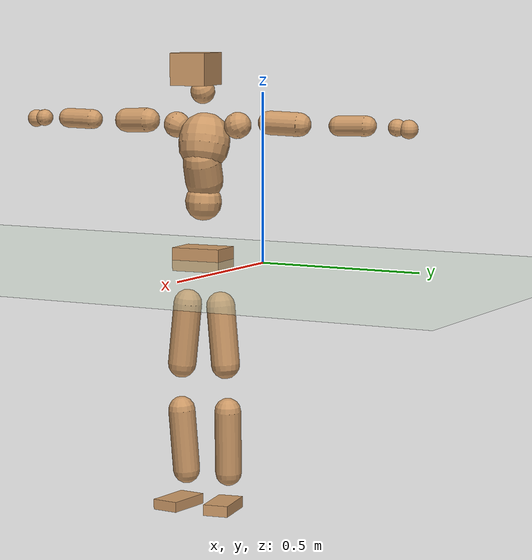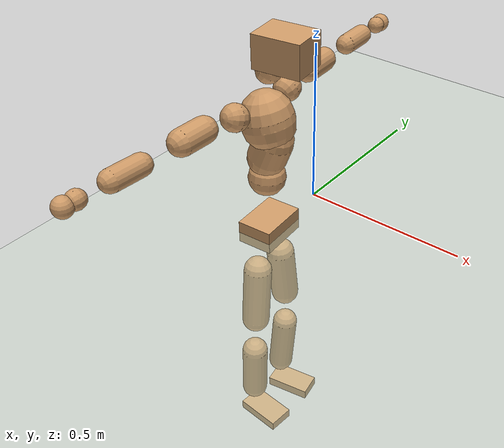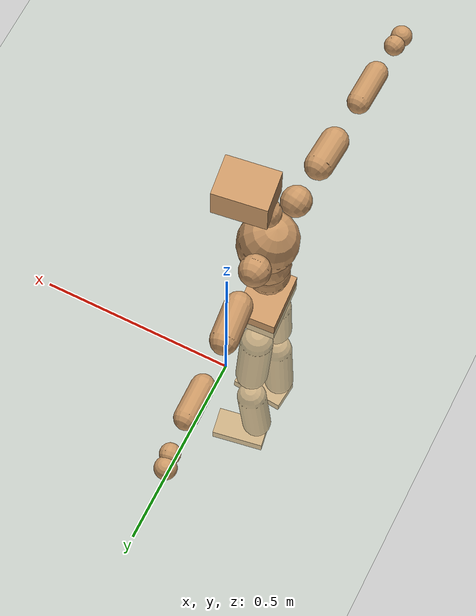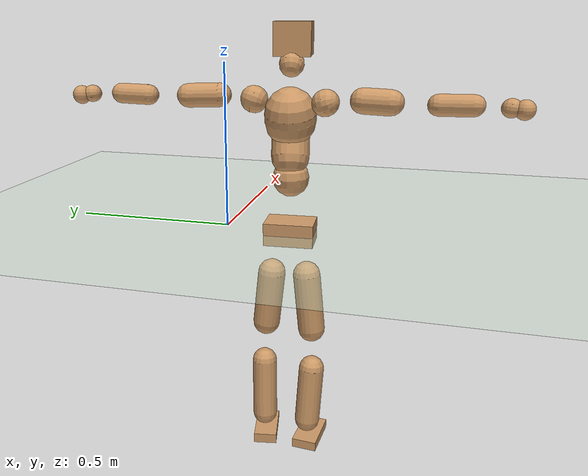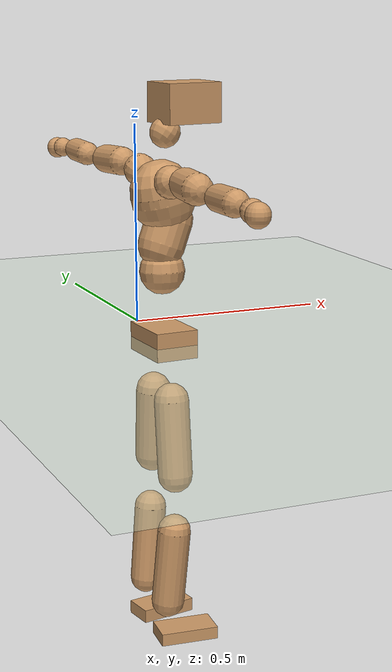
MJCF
<mujoco model="humanoid">
  <compiler coordinate="local" angle="radian"/>
  <default>
    <joint damping="0.0" armature="0.01" stiffness="0.0" limited="true"/>
    <geom conaffinity="1" condim="3" contype="7" margin="0.001" rgba="0.8 0.6 .4 1"/>
  </default>
  <asset>
    <texture type="skybox" builtin="gradient" rgb1=".4 .5 .6" rgb2="0 0 0" width="100" height="100"/>
    <texture builtin="flat" height="1278" mark="cross" markrgb="1 1 1" name="texgeom" random="0.01" rgb1="0.8 0.6 0.4" rgb2="0.8 0.6 0.4" type="cube" width="127"/>
    <texture builtin="checker" height="100" name="texplane" rgb1="0 0 0" rgb2="0.8 0.8 0.8" type="2d" width="100"/>
    <material name="MatPlane" reflectance="0.5" shininess="1" specular="1" texrepeat="60 60" texture="texplane"/>
    <material name="geom" texture="texgeom" texuniform="true"/>
  </asset>
  <worldbody>
    <light cutoff="100" diffuse="1 1 1" dir="-0 0 -1.3" directional="true" exponent="1" pos="0 0 1.3" specular=".1 .1 .1"/>
    <geom conaffinity="1" condim="3" name="floor" pos="0 0 0" rgba="0.8 0.9 0.8 1" size="100 100 .2" type="plane" material="MatPlane"/>
    <body name="Pelvis" pos="-0.0042 -0.2061 0.0116">
      <freejoint name="Pelvis"/>
      <geom type="box" contype="1" conaffinity="1" density="5359.37527" pos="-0.0053 -0.0003 -0.0109" size="0.0536 0.0758 0.0347" quat="0.9995 0.0000 0.0000 0.0315" name="Pelvis"/>
      <body name="L_Hip" pos="-0.0121 0.0493 -0.0783">
        <joint name="L_Hip_x" type="hinge" pos="0 0 0" axis="1 0 0" stiffness="1600" damping="160" armature="0.02" range="-180.0000 180.0000"/>
        <joint name="L_Hip_y" type="hinge" pos="0 0 0" axis="0 1 0" stiffness="1600" damping="160" armature="0.02" range="-180.0000 180.0000"/>
        <joint name="L_Hip_z" type="hinge" pos="0 0 0" axis="0 0 1" stiffness="1600" damping="160" armature="0.02" range="-180.0000 180.0000"/>
        <geom type="capsule" contype="1" conaffinity="1" density="2040.816327" size="0.0431" fromto="0.0011 0.0073 -0.0728 0.0036 0.0250 -0.2480" name="L_Hip"/>
        <body name="L_Knee" pos="0.0047 0.0324 -0.3208">
          <joint name="L_Knee_x" type="hinge" pos="0 0 0" axis="1 0 0" stiffness="1600" damping="160" armature="0.02" range="-180.0000 180.0000"/>
          <joint name="L_Knee_y" type="hinge" pos="0 0 0" axis="0 1 0" stiffness="1600" damping="160" armature="0.02" range="-180.0000 180.0000"/>
          <joint name="L_Knee_z" type="hinge" pos="0 0 0" axis="0 0 1" stiffness="1600" damping="160" armature="0.02" range="-180.0000 180.0000"/>
          <geom type="capsule" contype="1" conaffinity="1" density="1234.567901" size="0.04" fromto="-0.0058 -0.0023 -0.0697 -0.0218 -0.0084 -0.2602" name="L_Knee"/>
          <body name="L_Ankle" pos="-0.0276 -0.0107 -0.3299">
            <joint name="L_Ankle_x" type="hinge" pos="0 0 0" axis="1 0 0" stiffness="1600" damping="160" armature="0.02" range="-180.0000 180.0000"/>
            <joint name="L_Ankle_y" type="hinge" pos="0 0 0" axis="0 1 0" stiffness="1600" damping="160" armature="0.02" range="-180.0000 180.0000"/>
            <joint name="L_Ankle_z" type="hinge" pos="0 0 0" axis="0 0 1" stiffness="1600" damping="160" armature="0.02" range="-180.0000 180.0000"/>
            <geom type="box" contype="1" conaffinity="1" density="1000.000051" pos="0.0509 0.0088 -0.0237" size="0.0716 0.0377 0.0166" quat="0.9964 0.0000 0.0000 0.0852" name="L_Ankle"/>
            <body name="L_Toe" pos="0.1019 0.0175 -0.0473">
              <joint name="L_Toe_x" type="hinge" pos="0 0 0" axis="1 0 0" stiffness="1000" damping="100" armature="0.02" range="-180.0000 180.0000"/>
              <joint name="L_Toe_y" type="hinge" pos="0 0 0" axis="0 1 0" stiffness="1000" damping="100" armature="0.02" range="-180.0000 180.0000"/>
              <joint name="L_Toe_z" type="hinge" pos="0 0 0" axis="0 0 1" stiffness="1000" damping="100" armature="0.02" range="-180.0000 180.0000"/>
              <geom type="box" contype="1" conaffinity="1" density="8422517.060738" pos="0.0000 0.0000 0.0251" size="0.0007 0.0019 0.0009" quat="0.9957 0.0000 0.0000 0.0929" name="L_Toe"/>
            </body>
          </body>
        </body>
      </body>
      <body name="R_Hip" pos="-0.0092 -0.0478 -0.0774">
        <joint name="R_Hip_x" type="hinge" pos="0 0 0" axis="1 0 0" stiffness="1600" damping="160" armature="0.02" range="-180.0000 180.0000"/>
        <joint name="R_Hip_y" type="hinge" pos="0 0 0" axis="0 1 0" stiffness="1600" damping="160" armature="0.02" range="-180.0000 180.0000"/>
        <joint name="R_Hip_z" type="hinge" pos="0 0 0" axis="0 0 1" stiffness="1600" damping="160" armature="0.02" range="-180.0000 180.0000"/>
        <geom type="capsule" contype="1" conaffinity="1" density="2040.816327" size="0.0426" fromto="0.0005 -0.0075 -0.0722 0.0017 -0.0269 -0.2576" name="R_Hip"/>
        <body name="R_Knee" pos="0.0021 -0.0345 -0.3298">
          <joint name="R_Knee_x" type="hinge" pos="0 0 0" axis="1 0 0" stiffness="1600" damping="160" armature="0.02" range="-180.0000 180.0000"/>
          <joint name="R_Knee_y" type="hinge" pos="0 0 0" axis="0 1 0" stiffness="1600" damping="160" armature="0.02" range="-180.0000 180.0000"/>
          <joint name="R_Knee_z" type="hinge" pos="0 0 0" axis="0 0 1" stiffness="1600" damping="160" armature="0.02" range="-180.0000 180.0000"/>
          <geom type="capsule" contype="1" conaffinity="1" density="1234.567901" size="0.0407" fromto="-0.0054 0.0029 -0.0704 -0.0200 0.0108 -0.2584" name="R_Knee"/>
          <body name="R_Ankle" pos="-0.0254 0.0138 -0.3288">
            <joint name="R_Ankle_x" type="hinge" pos="0 0 0" axis="1 0 0" stiffness="1600" damping="160" armature="0.02" range="-180.0000 180.0000"/>
            <joint name="R_Ankle_y" type="hinge" pos="0 0 0" axis="0 1 0" stiffness="1600" damping="160" armature="0.02" range="-180.0000 180.0000"/>
            <joint name="R_Ankle_z" type="hinge" pos="0 0 0" axis="0 0 1" stiffness="1600" damping="160" armature="0.02" range="-180.0000 180.0000"/>
            <geom type="box" contype="1" conaffinity="1" density="999.999979" pos="0.0518 -0.0044 -0.0189" size="0.0728 0.0404 0.0155" quat="0.9991 0.0000 0.0000 -0.0427" name="R_Ankle"/>
            <body name="R_Toe" pos="0.1036 -0.0089 -0.0377">
              <joint name="R_Toe_x" type="hinge" pos="0 0 0" axis="1 0 0" stiffness="1000" damping="100" armature="0.02" range="-180.0000 180.0000"/>
              <joint name="R_Toe_y" type="hinge" pos="0 0 0" axis="0 1 0" stiffness="1000" damping="100" armature="0.02" range="-180.0000 180.0000"/>
              <joint name="R_Toe_z" type="hinge" pos="0 0 0" axis="0 0 1" stiffness="1000" damping="100" armature="0.02" range="-180.0000 180.0000"/>
              <geom type="box" contype="1" conaffinity="1" density="8640431.12268" pos="0.0000 0.0000 0.0218" size="0.0007 0.002 0.0009" quat="0.9995 0.0000 0.0000 -0.0325" name="R_Toe"/>
            </body>
          </body>
        </body>
      </body>
      <body name="Torso" pos="-0.0103 -0.0035 0.0902">
        <joint name="Torso_x" type="hinge" pos="0 0 0" axis="1 0 0" stiffness="2000" damping="200" armature="0.02" range="-180.0000 180.0000"/>
        <joint name="Torso_y" type="hinge" pos="0 0 0" axis="0 1 0" stiffness="2000" damping="200" armature="0.02" range="-180.0000 180.0000"/>
        <joint name="Torso_z" type="hinge" pos="0 0 0" axis="0 0 1" stiffness="2000" damping="200" armature="0.02" range="-180.0000 180.0000"/>
        <geom type="capsule" contype="1" conaffinity="1" density="2040.816327" size="0.055" fromto="0.0015 0.0029 0.0674 0.0015 0.0030 0.0694" name="Torso"/>
        <body name="Spine" pos="0.003 0.0058 0.1368">
          <joint name="Spine_x" type="hinge" pos="0 0 0" axis="1 0 0" stiffness="2000" damping="200" armature="0.02" range="-180.0000 180.0000"/>
          <joint name="Spine_y" type="hinge" pos="0 0 0" axis="0 1 0" stiffness="2000" damping="200" armature="0.02" range="-180.0000 180.0000"/>
          <joint name="Spine_z" type="hinge" pos="0 0 0" axis="0 0 1" stiffness="2000" damping="200" armature="0.02" range="-180.0000 180.0000"/>
          <geom type="capsule" contype="1" conaffinity="1" density="2040.816327" size="0.057" fromto="0.0201 0.0036 0.0532 -0.0020 -0.0003 -0.0052" name="Spine"/>
          <body name="Chest" pos="0.0181 0.0032 0.048">
            <joint name="Chest_x" type="hinge" pos="0 0 0" axis="1 0 0" stiffness="2000" damping="200" armature="0.02" range="-180.0000 180.0000"/>
            <joint name="Chest_y" type="hinge" pos="0 0 0" axis="0 1 0" stiffness="2000" damping="200" armature="0.02" range="-180.0000 180.0000"/>
            <joint name="Chest_z" type="hinge" pos="0 0 0" axis="0 0 1" stiffness="2000" damping="200" armature="0.02" range="-180.0000 180.0000"/>
            <geom type="capsule" contype="1" conaffinity="1" density="2040.816327" size="0.0759" fromto="-0.0188 -0.0013 0.0735 -0.0133 -0.0009 0.0520" name="Chest"/>
            <body name="Neck" pos="-0.0339 -0.0043 0.1786">
              <joint name="Neck_x" type="hinge" pos="0 0 0" axis="1 0 0" stiffness="1000" damping="100" armature="0.02" range="-180.0000 180.0000"/>
              <joint name="Neck_y" type="hinge" pos="0 0 0" axis="0 1 0" stiffness="1000" damping="100" armature="0.02" range="-180.0000 180.0000"/>
              <joint name="Neck_z" type="hinge" pos="0 0 0" axis="0 0 1" stiffness="1000" damping="100" armature="0.02" range="-180.0000 180.0000"/>
              <geom type="capsule" contype="1" conaffinity="1" density="1000" size="0.0362" fromto="0.0246 0.0025 0.0324 0.0258 0.0026 0.0340" name="Neck"/>
              <body name="Head" pos="0.0503 0.005 0.0665">
                <joint name="Head_x" type="hinge" pos="0 0 0" axis="1 0 0" stiffness="1000" damping="100" armature="0.02" range="-180.0000 180.0000"/>
                <joint name="Head_y" type="hinge" pos="0 0 0" axis="0 1 0" stiffness="1000" damping="100" armature="0.02" range="-180.0000 180.0000"/>
                <joint name="Head_z" type="hinge" pos="0 0 0" axis="0 0 1" stiffness="1000" damping="100" armature="0.02" range="-180.0000 180.0000"/>
                <geom type="box" contype="1" conaffinity="1" density="2250.000063" pos="0.0262 0.0035 0.0342" size="0.0695 0.0536 0.0473" quat="0.9978 0.0000 0.0000 0.0667" name="Head"/>
              </body>
            </body>
            <body name="L_Thorax" pos="-0.0295 0.0648 0.1005">
              <joint name="L_Thorax_x" type="hinge" pos="0 0 0" axis="1 0 0" stiffness="1000" damping="100" armature="0.02" range="-180.0000 180.0000"/>
              <joint name="L_Thorax_y" type="hinge" pos="0 0 0" axis="0 1 0" stiffness="1000" damping="100" armature="0.02" range="-180.0000 180.0000"/>
              <joint name="L_Thorax_z" type="hinge" pos="0 0 0" axis="0 0 1" stiffness="1000" damping="100" armature="0.02" range="-180.0000 180.0000"/>
              <geom type="capsule" contype="1" conaffinity="1" density="1000" size="0.0396" fromto="-0.0018 0.0373 0.0121 -0.0018 0.0392 0.0127" name="L_Thorax"/>
              <body name="L_Shoulder" pos="-0.0036 0.0765 0.0249">
                <joint name="L_Shoulder_x" type="hinge" pos="0 0 0" axis="1 0 0" stiffness="1000" damping="100" armature="0.02" range="-720.0000 720.0000"/>
                <joint name="L_Shoulder_y" type="hinge" pos="0 0 0" axis="0 1 0" stiffness="1000" damping="100" armature="0.02" range="-720.0000 720.0000"/>
                <joint name="L_Shoulder_z" type="hinge" pos="0 0 0" axis="0 0 1" stiffness="1000" damping="100" armature="0.02" range="-720.0000 720.0000"/>
                <geom type="capsule" contype="1" conaffinity="1" density="1000" size="0.0352" fromto="-0.0064 0.0648 -0.0023 -0.0153 0.1563 -0.0056" name="L_Shoulder"/>
                <body name="L_Elbow" pos="-0.0217 0.2211 -0.0079">
                  <joint name="L_Elbow_x" type="hinge" pos="0 0 0" axis="1 0 0" stiffness="1000" damping="100" armature="0.02" range="-720.0000 720.0000"/>
                  <joint name="L_Elbow_y" type="hinge" pos="0 0 0" axis="0 1 0" stiffness="1000" damping="100" armature="0.02" range="-720.0000 720.0000"/>
                  <joint name="L_Elbow_z" type="hinge" pos="0 0 0" axis="0 0 1" stiffness="1000" damping="100" armature="0.02" range="-720.0000 720.0000"/>
                  <geom type="capsule" contype="1" conaffinity="1" density="1000" size="0.0297" fromto="-0.0012 0.0597 0.0015 -0.0028 0.1461 0.0036" name="L_Elbow"/>
                  <body name="L_Wrist" pos="-0.004 0.2058 0.005">
                    <joint name="L_Wrist_x" type="hinge" pos="0 0 0" axis="1 0 0" stiffness="600" damping="60" armature="0.02" range="-180.0000 180.0000"/>
                    <joint name="L_Wrist_y" type="hinge" pos="0 0 0" axis="0 1 0" stiffness="600" damping="60" armature="0.02" range="-180.0000 180.0000"/>
                    <joint name="L_Wrist_z" type="hinge" pos="0 0 0" axis="0 0 1" stiffness="600" damping="60" armature="0.02" range="-180.0000 180.0000"/>
                    <geom type="capsule" contype="1" conaffinity="1" density="1000" size="0.0251" fromto="-0.0056 0.0327 -0.0040 -0.0059 0.0347 -0.0042" name="L_Wrist"/>
                    <body name="L_Hand" pos="-0.0114 0.0673 -0.0082">
                      <joint name="L_Hand_x" type="hinge" pos="0 0 0" axis="1 0 0" stiffness="600" damping="60" armature="0.02" range="-180.0000 180.0000"/>
                      <joint name="L_Hand_y" type="hinge" pos="0 0 0" axis="0 1 0" stiffness="600" damping="60" armature="0.02" range="-180.0000 180.0000"/>
                      <joint name="L_Hand_z" type="hinge" pos="0 0 0" axis="0 0 1" stiffness="600" damping="60" armature="0.02" range="-180.0000 180.0000"/>
                      <geom type="sphere" contype="1" conaffinity="1" density="1000" size="0.0273" pos="0.0000 0.0000 0.0000" name="L_Hand"/>
                    </body>
                  </body>
                </body>
              </body>
            </body>
            <body name="R_Thorax" pos="-0.0331 -0.0672 0.0974">
              <joint name="R_Thorax_x" type="hinge" pos="0 0 0" axis="1 0 0" stiffness="1000" damping="100" armature="0.02" range="-180.0000 180.0000"/>
              <joint name="R_Thorax_y" type="hinge" pos="0 0 0" axis="0 1 0" stiffness="1000" damping="100" armature="0.02" range="-180.0000 180.0000"/>
              <joint name="R_Thorax_z" type="hinge" pos="0 0 0" axis="0 0 1" stiffness="1000" damping="100" armature="0.02" range="-180.0000 180.0000"/>
              <geom type="capsule" contype="1" conaffinity="1" density="1000" size="0.0388" fromto="-0.0047 -0.0389 0.0119 -0.0050 -0.0408 0.0125" name="R_Thorax"/>
              <body name="R_Shoulder" pos="-0.0097 -0.0798 0.0245">
                <joint name="R_Shoulder_x" type="hinge" pos="0 0 0" axis="1 0 0" stiffness="1000" damping="100" armature="0.02" range="-720.0000 720.0000"/>
                <joint name="R_Shoulder_y" type="hinge" pos="0 0 0" axis="0 1 0" stiffness="1000" damping="100" armature="0.02" range="-720.0000 720.0000"/>
                <joint name="R_Shoulder_z" type="hinge" pos="0 0 0" axis="0 0 1" stiffness="1000" damping="100" armature="0.02" range="-720.0000 720.0000"/>
                <geom type="capsule" contype="1" conaffinity="1" density="1000" size="0.0364" fromto="-0.0038 -0.0662 -0.0019 -0.0082 -0.1430 -0.0041" name="R_Shoulder"/>
                <body name="R_Elbow" pos="-0.012 -0.2093 -0.006">
                  <joint name="R_Elbow_x" type="hinge" pos="0 0 0" axis="1 0 0" stiffness="1000" damping="100" armature="0.02" range="-720.0000 720.0000"/>
                  <joint name="R_Elbow_y" type="hinge" pos="0 0 0" axis="0 1 0" stiffness="1000" damping="100" armature="0.02" range="-720.0000 720.0000"/>
                  <joint name="R_Elbow_z" type="hinge" pos="0 0 0" axis="0 0 1" stiffness="1000" damping="100" armature="0.02" range="-720.0000 720.0000"/>
                  <geom type="capsule" contype="1" conaffinity="1" density="1000" size="0.0299" fromto="-0.0024 -0.0598 0.0010 -0.0059 -0.1508 0.0025" name="R_Elbow"/>
                  <body name="R_Wrist" pos="-0.0083 -0.2107 0.0035">
                    <joint name="R_Wrist_x" type="hinge" pos="0 0 0" axis="1 0 0" stiffness="600" damping="60" armature="0.02" range="-180.0000 180.0000"/>
                    <joint name="R_Wrist_y" type="hinge" pos="0 0 0" axis="0 1 0" stiffness="600" damping="60" armature="0.02" range="-180.0000 180.0000"/>
                    <joint name="R_Wrist_z" type="hinge" pos="0 0 0" axis="0 0 1" stiffness="600" damping="60" armature="0.02" range="-180.0000 180.0000"/>
                    <geom type="capsule" contype="1" conaffinity="1" density="1000" size="0.0255" fromto="-0.0039 -0.0322 -0.0028 -0.0042 -0.0342 -0.0030" name="R_Wrist"/>
                    <body name="R_Hand" pos="-0.0081 -0.0664 -0.0058">
                      <joint name="R_Hand_x" type="hinge" pos="0 0 0" axis="1 0 0" stiffness="600" damping="60" armature="0.02" range="-180.0000 180.0000"/>
                      <joint name="R_Hand_y" type="hinge" pos="0 0 0" axis="0 1 0" stiffness="600" damping="60" armature="0.02" range="-180.0000 180.0000"/>
                      <joint name="R_Hand_z" type="hinge" pos="0 0 0" axis="0 0 1" stiffness="600" damping="60" armature="0.02" range="-180.0000 180.0000"/>
                      <geom type="sphere" contype="1" conaffinity="1" density="1000" size="0.0268" pos="0.0000 0.0000 0.0000" name="R_Hand"/>
                    </body>
                  </body>
                </body>
              </body>
            </body>
          </body>
        </body>
      </body>
    </body>
  </worldbody>
  <actuator>
    <motor name="L_Hip_x" joint="L_Hip_x" gear="500"/>
    <motor name="L_Hip_y" joint="L_Hip_y" gear="500"/>
    <motor name="L_Hip_z" joint="L_Hip_z" gear="500"/>
    <motor name="L_Knee_x" joint="L_Knee_x" gear="500"/>
    <motor name="L_Knee_y" joint="L_Knee_y" gear="500"/>
    <motor name="L_Knee_z" joint="L_Knee_z" gear="500"/>
    <motor name="L_Ankle_x" joint="L_Ankle_x" gear="500"/>
    <motor name="L_Ankle_y" joint="L_Ankle_y" gear="500"/>
    <motor name="L_Ankle_z" joint="L_Ankle_z" gear="500"/>
    <motor name="L_Toe_x" joint="L_Toe_x" gear="500"/>
    <motor name="L_Toe_y" joint="L_Toe_y" gear="500"/>
    <motor name="L_Toe_z" joint="L_Toe_z" gear="500"/>
    <motor name="R_Hip_x" joint="R_Hip_x" gear="500"/>
    <motor name="R_Hip_y" joint="R_Hip_y" gear="500"/>
    <motor name="R_Hip_z" joint="R_Hip_z" gear="500"/>
    <motor name="R_Knee_x" joint="R_Knee_x" gear="500"/>
    <motor name="R_Knee_y" joint="R_Knee_y" gear="500"/>
    <motor name="R_Knee_z" joint="R_Knee_z" gear="500"/>
    <motor name="R_Ankle_x" joint="R_Ankle_x" gear="500"/>
    <motor name="R_Ankle_y" joint="R_Ankle_y" gear="500"/>
    <motor name="R_Ankle_z" joint="R_Ankle_z" gear="500"/>
    <motor name="R_Toe_x" joint="R_Toe_x" gear="500"/>
    <motor name="R_Toe_y" joint="R_Toe_y" gear="500"/>
    <motor name="R_Toe_z" joint="R_Toe_z" gear="500"/>
    <motor name="Torso_x" joint="Torso_x" gear="500"/>
    <motor name="Torso_y" joint="Torso_y" gear="500"/>
    <motor name="Torso_z" joint="Torso_z" gear="500"/>
    <motor name="Spine_x" joint="Spine_x" gear="500"/>
    <motor name="Spine_y" joint="Spine_y" gear="500"/>
    <motor name="Spine_z" joint="Spine_z" gear="500"/>
    <motor name="Chest_x" joint="Chest_x" gear="500"/>
    <motor name="Chest_y" joint="Chest_y" gear="500"/>
    <motor name="Chest_z" joint="Chest_z" gear="500"/>
    <motor name="Neck_x" joint="Neck_x" gear="500"/>
    <motor name="Neck_y" joint="Neck_y" gear="500"/>
    <motor name="Neck_z" joint="Neck_z" gear="500"/>
    <motor name="Head_x" joint="Head_x" gear="500"/>
    <motor name="Head_y" joint="Head_y" gear="500"/>
    <motor name="Head_z" joint="Head_z" gear="500"/>
    <motor name="L_Thorax_x" joint="L_Thorax_x" gear="500"/>
    <motor name="L_Thorax_y" joint="L_Thorax_y" gear="500"/>
    <motor name="L_Thorax_z" joint="L_Thorax_z" gear="500"/>
    <motor name="L_Shoulder_x" joint="L_Shoulder_x" gear="500"/>
    <motor name="L_Shoulder_y" joint="L_Shoulder_y" gear="500"/>
    <motor name="L_Shoulder_z" joint="L_Shoulder_z" gear="500"/>
    <motor name="L_Elbow_x" joint="L_Elbow_x" gear="500"/>
    <motor name="L_Elbow_y" joint="L_Elbow_y" gear="500"/>
    <motor name="L_Elbow_z" joint="L_Elbow_z" gear="500"/>
    <motor name="L_Wrist_x" joint="L_Wrist_x" gear="500"/>
    <motor name="L_Wrist_y" joint="L_Wrist_y" gear="500"/>
    <motor name="L_Wrist_z" joint="L_Wrist_z" gear="500"/>
    <motor name="L_Hand_x" joint="L_Hand_x" gear="500"/>
    <motor name="L_Hand_y" joint="L_Hand_y" gear="500"/>
    <motor name="L_Hand_z" joint="L_Hand_z" gear="500"/>
    <motor name="R_Thorax_x" joint="R_Thorax_x" gear="500"/>
    <motor name="R_Thorax_y" joint="R_Thorax_y" gear="500"/>
    <motor name="R_Thorax_z" joint="R_Thorax_z" gear="500"/>
    <motor name="R_Shoulder_x" joint="R_Shoulder_x" gear="500"/>
    <motor name="R_Shoulder_y" joint="R_Shoulder_y" gear="500"/>
    <motor name="R_Shoulder_z" joint="R_Shoulder_z" gear="500"/>
    <motor name="R_Elbow_x" joint="R_Elbow_x" gear="500"/>
    <motor name="R_Elbow_y" joint="R_Elbow_y" gear="500"/>
    <motor name="R_Elbow_z" joint="R_Elbow_z" gear="500"/>
    <motor name="R_Wrist_x" joint="R_Wrist_x" gear="500"/>
    <motor name="R_Wrist_y" joint="R_Wrist_y" gear="500"/>
    <motor name="R_Wrist_z" joint="R_Wrist_z" gear="500"/>
    <motor name="R_Hand_x" joint="R_Hand_x" gear="500"/>
    <motor name="R_Hand_y" joint="R_Hand_y" gear="500"/>
    <motor name="R_Hand_z" joint="R_Hand_z" gear="500"/>
  </actuator>
  <contact>
    <exclude body1="Torso" body2="Chest"/>
    <exclude body1="Head" body2="Chest"/>
    <exclude body1="R_Knee" body2="R_Toe"/>
    <exclude body1="R_Knee" body2="L_Ankle"/>
    <exclude body1="R_Knee" body2="L_Toe"/>
    <exclude body1="L_Knee" body2="L_Toe"/>
    <exclude body1="L_Knee" body2="R_Ankle"/>
    <exclude body1="L_Knee" body2="R_Toe"/>
    <exclude body1="L_Shoulder" body2="Chest"/>
    <exclude body1="R_Shoulder" body2="Chest"/>
  </contact>
  <sensor/>
  <size njmax="700" nconmax="700"/>
</mujoco>
